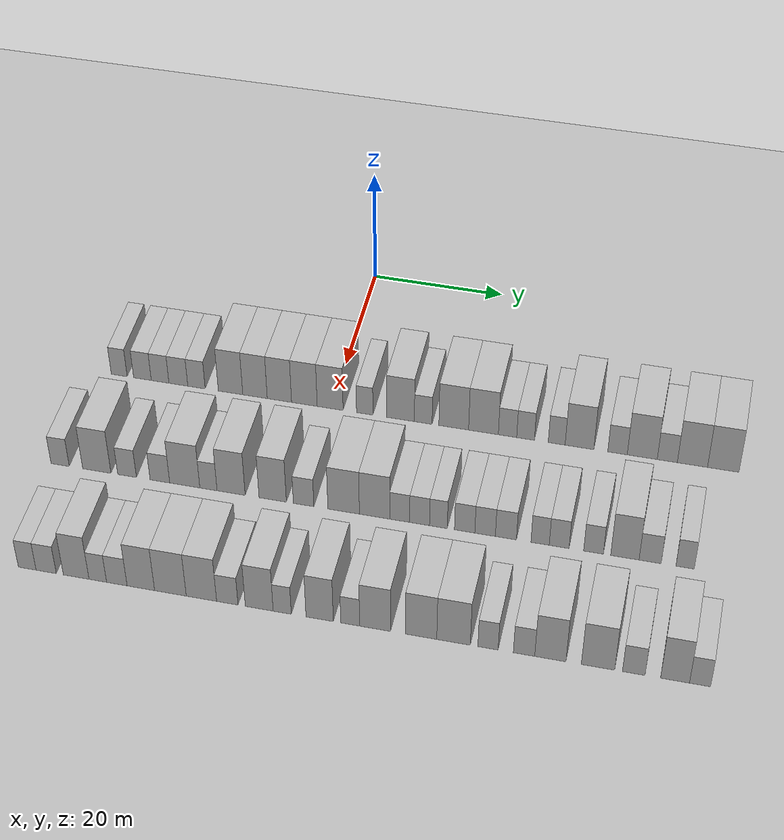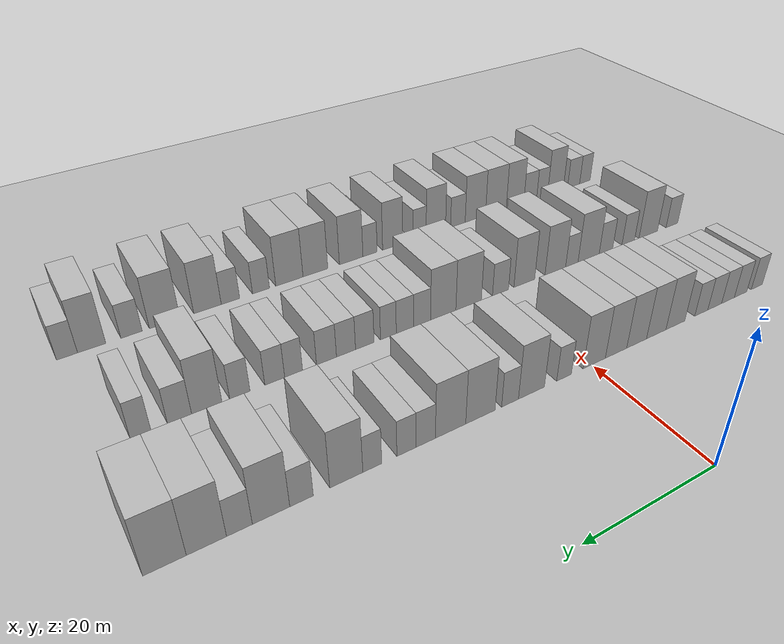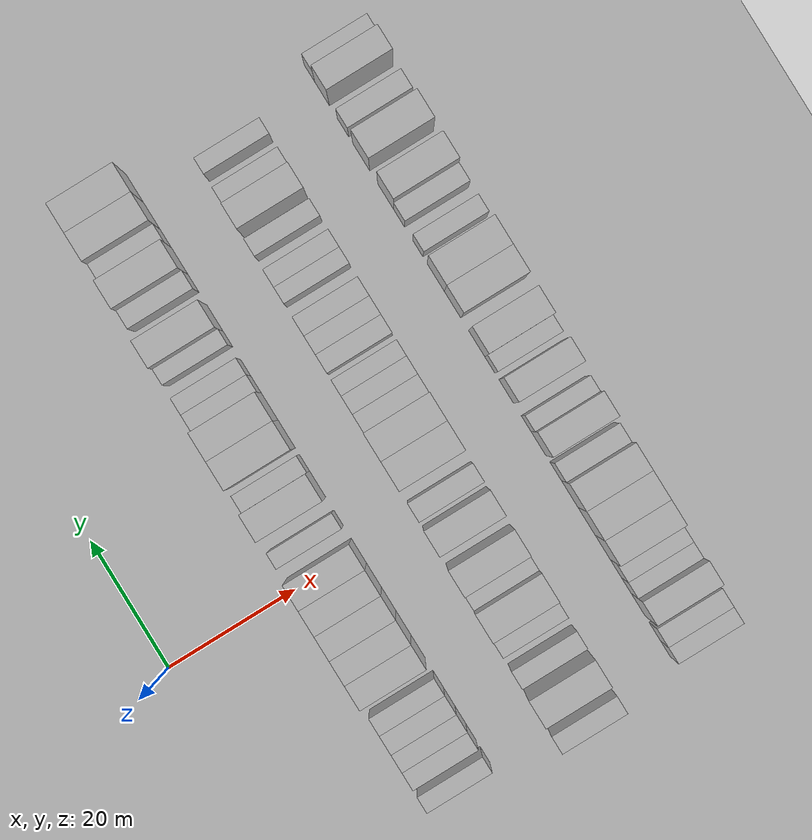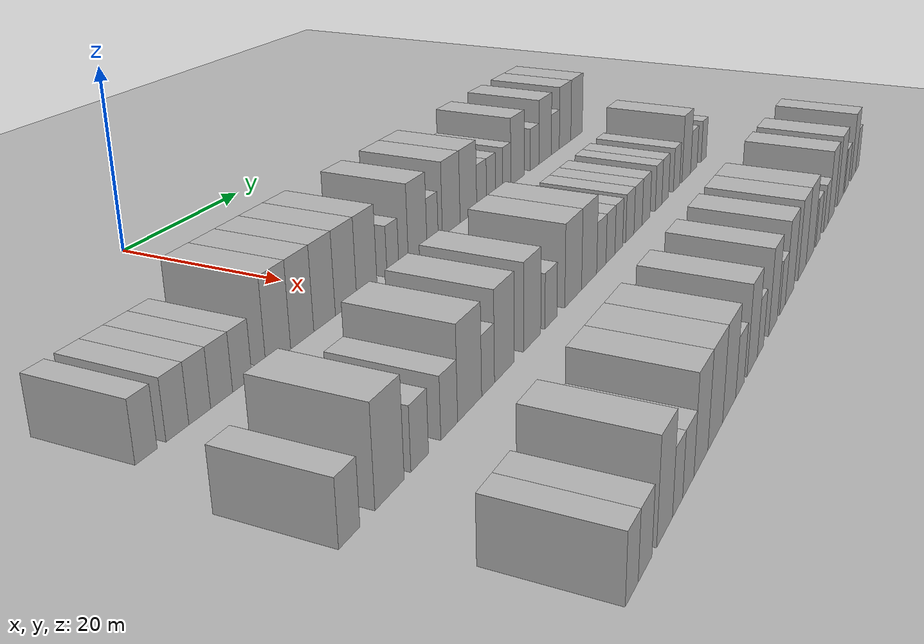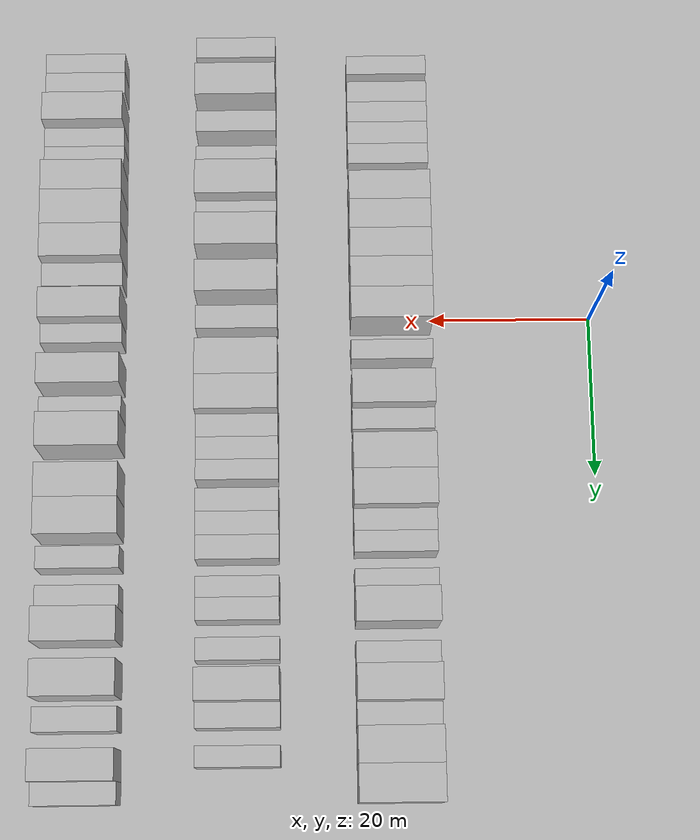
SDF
<sdf version="1.6">
 <world name="default">
  <include><name>ground_plane_1</name><uri>model://HANNAS_ground_plane</uri></include>
  <include>
   <name>ground_plane_2</name>
   <uri>model://HANNAS_ground_plane</uri>
   <pose>100 0 0  0 0 0</pose>
  </include>
  <model name="building_47">
   <static>1</static>
   <pose>25.0000 -32.0762 0 0.000000 0.000000 0.000000</pose>
   <link name="link">
    <pose>0 0 3.00 0 0 0</pose>
    <collision name="collision"><geometry><box><size>10.0000 2.4571 6.0000</size></box></geometry></collision>
    <visual name="visual">
     <cast_shadows>0</cast_shadows>
     <geometry><box><size>10.0000 2.4571 6.0000</size></box></geometry>
     <material>
      <script>
       <uri>model://HANNAS_wall/materials/scripts</uri>
       <uri>model://HANNAS_wall/materials/textures</uri>
       <name>vrc/HANNAS_wall</name>
      </script>
     </material>
    </visual>
   </link>
  </model>
  <model name="building_48">
   <static>1</static>
   <pose>25.0000 -28.4923 0 0.000000 0.000000 0.000000</pose>
   <link name="link">
    <pose>0 0 3.00 0 0 0</pose>
    <collision name="collision"><geometry><box><size>10.0000 2.7107 6.0000</size></box></geometry></collision>
    <visual name="visual">
     <cast_shadows>0</cast_shadows>
     <geometry><box><size>10.0000 2.7107 6.0000</size></box></geometry>
     <material>
      <script>
       <uri>model://HANNAS_wall/materials/scripts</uri>
       <uri>model://HANNAS_wall/materials/textures</uri>
       <name>vrc/HANNAS_wall</name>
      </script>
     </material>
    </visual>
   </link>
  </model>
  <model name="building_49">
   <static>1</static>
   <pose>25.0000 -25.7781 0 0.000000 0.000000 0.000000</pose>
   <link name="link">
    <pose>0 0 3.00 0 0 0</pose>
    <collision name="collision"><geometry><box><size>10.0000 2.7178 6.0000</size></box></geometry></collision>
    <visual name="visual">
     <cast_shadows>0</cast_shadows>
     <geometry><box><size>10.0000 2.7178 6.0000</size></box></geometry>
     <material>
      <script>
       <uri>model://HANNAS_wall/materials/scripts</uri>
       <uri>model://HANNAS_wall/materials/textures</uri>
       <name>vrc/HANNAS_wall</name>
      </script>
     </material>
    </visual>
   </link>
  </model>
  <model name="building_50">
   <static>1</static>
   <pose>25.0000 -22.9777 0 0.000000 0.000000 0.000000</pose>
   <link name="link">
    <pose>0 0 3.00 0 0 0</pose>
    <collision name="collision"><geometry><box><size>10.0000 2.8830 6.0000</size></box></geometry></collision>
    <visual name="visual">
     <cast_shadows>0</cast_shadows>
     <geometry><box><size>10.0000 2.8830 6.0000</size></box></geometry>
     <material>
      <script>
       <uri>model://HANNAS_wall/materials/scripts</uri>
       <uri>model://HANNAS_wall/materials/textures</uri>
       <name>vrc/HANNAS_wall</name>
      </script>
     </material>
    </visual>
   </link>
  </model>
  <model name="building_51">
   <static>1</static>
   <pose>25.0000 -20.2062 0 0.000000 0.000000 0.000000</pose>
   <link name="link">
    <pose>0 0 3.00 0 0 0</pose>
    <collision name="collision"><geometry><box><size>10.0000 2.6601 6.0000</size></box></geometry></collision>
    <visual name="visual">
     <cast_shadows>0</cast_shadows>
     <geometry><box><size>10.0000 2.6601 6.0000</size></box></geometry>
     <material>
      <script>
       <uri>model://HANNAS_wall/materials/scripts</uri>
       <uri>model://HANNAS_wall/materials/textures</uri>
       <name>vrc/HANNAS_wall</name>
      </script>
     </material>
    </visual>
   </link>
  </model>
  <model name="building_52">
   <static>1</static>
   <pose>25.0000 -15.0170 0 0.000000 0.000000 0.000000</pose>
   <link name="link">
    <pose>0 0 4.50 0 0 0</pose>
    <collision name="collision"><geometry><box><size>10.0000 3.7184 9.0000</size></box></geometry></collision>
    <visual name="visual">
     <cast_shadows>0</cast_shadows>
     <geometry><box><size>10.0000 3.7184 9.0000</size></box></geometry>
     <material>
      <script>
       <uri>model://HANNAS_wall/materials/scripts</uri>
       <uri>model://HANNAS_wall/materials/textures</uri>
       <name>vrc/HANNAS_wall</name>
      </script>
     </material>
    </visual>
   </link>
  </model>
  <model name="building_53">
   <static>1</static>
   <pose>25.0000 -11.3058 0 0.000000 0.000000 0.000000</pose>
   <link name="link">
    <pose>0 0 4.50 0 0 0</pose>
    <collision name="collision"><geometry><box><size>10.0000 3.7040 9.0000</size></box></geometry></collision>
    <visual name="visual">
     <cast_shadows>0</cast_shadows>
     <geometry><box><size>10.0000 3.7040 9.0000</size></box></geometry>
     <material>
      <script>
       <uri>model://HANNAS_wall/materials/scripts</uri>
       <uri>model://HANNAS_wall/materials/textures</uri>
       <name>vrc/HANNAS_wall</name>
      </script>
     </material>
    </visual>
   </link>
  </model>
  <model name="building_54">
   <static>1</static>
   <pose>25.0000 -7.6224 0 0.000000 0.000000 0.000000</pose>
   <link name="link">
    <pose>0 0 4.50 0 0 0</pose>
    <collision name="collision"><geometry><box><size>10.0000 3.6626 9.0000</size></box></geometry></collision>
    <visual name="visual">
     <cast_shadows>0</cast_shadows>
     <geometry><box><size>10.0000 3.6626 9.0000</size></box></geometry>
     <material>
      <script>
       <uri>model://HANNAS_wall/materials/scripts</uri>
       <uri>model://HANNAS_wall/materials/textures</uri>
       <name>vrc/HANNAS_wall</name>
      </script>
     </material>
    </visual>
   </link>
  </model>
  <model name="building_55">
   <static>1</static>
   <pose>25.0000 -3.8664 0 0.000000 0.000000 0.000000</pose>
   <link name="link">
    <pose>0 0 4.50 0 0 0</pose>
    <collision name="collision"><geometry><box><size>10.0000 3.8495 9.0000</size></box></geometry></collision>
    <visual name="visual">
     <cast_shadows>0</cast_shadows>
     <geometry><box><size>10.0000 3.8495 9.0000</size></box></geometry>
     <material>
      <script>
       <uri>model://HANNAS_wall/materials/scripts</uri>
       <uri>model://HANNAS_wall/materials/textures</uri>
       <name>vrc/HANNAS_wall</name>
      </script>
     </material>
    </visual>
   </link>
  </model>
  <model name="building_56">
   <static>1</static>
   <pose>25.0000 -0.0037 0 0.000000 0.000000 0.000000</pose>
   <link name="link">
    <pose>0 0 4.50 0 0 0</pose>
    <collision name="collision"><geometry><box><size>10.0000 3.8758 9.0000</size></box></geometry></collision>
    <visual name="visual">
     <cast_shadows>0</cast_shadows>
     <geometry><box><size>10.0000 3.8758 9.0000</size></box></geometry>
     <material>
      <script>
       <uri>model://HANNAS_wall/materials/scripts</uri>
       <uri>model://HANNAS_wall/materials/textures</uri>
       <name>vrc/HANNAS_wall</name>
      </script>
     </material>
    </visual>
   </link>
  </model>
  <model name="building_57">
   <static>1</static>
   <pose>25.0000 5.1541 0 0.000000 0.000000 0.000000</pose>
   <link name="link">
    <pose>0 0 3.00 0 0 0</pose>
    <collision name="collision"><geometry><box><size>10.0000 2.4397 6.0000</size></box></geometry></collision>
    <visual name="visual">
     <cast_shadows>0</cast_shadows>
     <geometry><box><size>10.0000 2.4397 6.0000</size></box></geometry>
     <material>
      <script>
       <uri>model://HANNAS_wall/materials/scripts</uri>
       <uri>model://HANNAS_wall/materials/textures</uri>
       <name>vrc/HANNAS_wall</name>
      </script>
     </material>
    </visual>
   </link>
  </model>
  <model name="building_58">
   <static>1</static>
   <pose>25.0000 10.4442 0 0.000000 0.000000 0.000000</pose>
   <link name="link">
    <pose>0 0 4.50 0 0 0</pose>
    <collision name="collision"><geometry><box><size>10.0000 4.1406 9.0000</size></box></geometry></collision>
    <visual name="visual">
     <cast_shadows>0</cast_shadows>
     <geometry><box><size>10.0000 4.1406 9.0000</size></box></geometry>
     <material>
      <script>
       <uri>model://HANNAS_wall/materials/scripts</uri>
       <uri>model://HANNAS_wall/materials/textures</uri>
       <name>vrc/HANNAS_wall</name>
      </script>
     </material>
    </visual>
   </link>
  </model>
  <model name="building_59">
   <static>1</static>
   <pose>25.0000 13.8162 0 0.000000 0.000000 0.000000</pose>
   <link name="link">
    <pose>0 0 3.00 0 0 0</pose>
    <collision name="collision"><geometry><box><size>10.0000 2.6035 6.0000</size></box></geometry></collision>
    <visual name="visual">
     <cast_shadows>0</cast_shadows>
     <geometry><box><size>10.0000 2.6035 6.0000</size></box></geometry>
     <material>
      <script>
       <uri>model://HANNAS_wall/materials/scripts</uri>
       <uri>model://HANNAS_wall/materials/textures</uri>
       <name>vrc/HANNAS_wall</name>
      </script>
     </material>
    </visual>
   </link>
  </model>
  <model name="building_60">
   <static>1</static>
   <pose>25.0000 18.2970 0 0.000000 0.000000 0.000000</pose>
   <link name="link">
    <pose>0 0 4.50 0 0 0</pose>
    <collision name="collision"><geometry><box><size>10.0000 4.3581 9.0000</size></box></geometry></collision>
    <visual name="visual">
     <cast_shadows>0</cast_shadows>
     <geometry><box><size>10.0000 4.3581 9.0000</size></box></geometry>
     <material>
      <script>
       <uri>model://HANNAS_wall/materials/scripts</uri>
       <uri>model://HANNAS_wall/materials/textures</uri>
       <name>vrc/HANNAS_wall</name>
      </script>
     </material>
    </visual>
   </link>
  </model>
  <model name="building_61">
   <static>1</static>
   <pose>25.0000 22.6482 0 0.000000 0.000000 0.000000</pose>
   <link name="link">
    <pose>0 0 4.50 0 0 0</pose>
    <collision name="collision"><geometry><box><size>10.0000 4.3442 9.0000</size></box></geometry></collision>
    <visual name="visual">
     <cast_shadows>0</cast_shadows>
     <geometry><box><size>10.0000 4.3442 9.0000</size></box></geometry>
     <material>
      <script>
       <uri>model://HANNAS_wall/materials/scripts</uri>
       <uri>model://HANNAS_wall/materials/textures</uri>
       <name>vrc/HANNAS_wall</name>
      </script>
     </material>
    </visual>
   </link>
  </model>
  <model name="building_62">
   <static>1</static>
   <pose>25.0000 26.1562 0 0.000000 0.000000 0.000000</pose>
   <link name="link">
    <pose>0 0 3.00 0 0 0</pose>
    <collision name="collision"><geometry><box><size>10.0000 2.6719 6.0000</size></box></geometry></collision>
    <visual name="visual">
     <cast_shadows>0</cast_shadows>
     <geometry><box><size>10.0000 2.6719 6.0000</size></box></geometry>
     <material>
      <script>
       <uri>model://HANNAS_wall/materials/scripts</uri>
       <uri>model://HANNAS_wall/materials/textures</uri>
       <name>vrc/HANNAS_wall</name>
      </script>
     </material>
    </visual>
   </link>
  </model>
  <model name="building_63">
   <static>1</static>
   <pose>25.0000 28.7782 0 0.000000 0.000000 0.000000</pose>
   <link name="link">
    <pose>0 0 3.00 0 0 0</pose>
    <collision name="collision"><geometry><box><size>10.0000 2.5722 6.0000</size></box></geometry></collision>
    <visual name="visual">
     <cast_shadows>0</cast_shadows>
     <geometry><box><size>10.0000 2.5722 6.0000</size></box></geometry>
     <material>
      <script>
       <uri>model://HANNAS_wall/materials/scripts</uri>
       <uri>model://HANNAS_wall/materials/textures</uri>
       <name>vrc/HANNAS_wall</name>
      </script>
     </material>
    </visual>
   </link>
  </model>
  <model name="building_64">
   <static>1</static>
   <pose>25.0000 33.2823 0 0.000000 0.000000 0.000000</pose>
   <link name="link">
    <pose>0 0 3.00 0 0 0</pose>
    <collision name="collision"><geometry><box><size>10.0000 2.4359 6.0000</size></box></geometry></collision>
    <visual name="visual">
     <cast_shadows>0</cast_shadows>
     <geometry><box><size>10.0000 2.4359 6.0000</size></box></geometry>
     <material>
      <script>
       <uri>model://HANNAS_wall/materials/scripts</uri>
       <uri>model://HANNAS_wall/materials/textures</uri>
       <name>vrc/HANNAS_wall</name>
      </script>
     </material>
    </visual>
   </link>
  </model>
  <model name="building_65">
   <static>1</static>
   <pose>25.0000 36.5672 0 0.000000 0.000000 0.000000</pose>
   <link name="link">
    <pose>0 0 4.50 0 0 0</pose>
    <collision name="collision"><geometry><box><size>10.0000 4.1339 9.0000</size></box></geometry></collision>
    <visual name="visual">
     <cast_shadows>0</cast_shadows>
     <geometry><box><size>10.0000 4.1339 9.0000</size></box></geometry>
     <material>
      <script>
       <uri>model://HANNAS_wall/materials/scripts</uri>
       <uri>model://HANNAS_wall/materials/textures</uri>
       <name>vrc/HANNAS_wall</name>
      </script>
     </material>
    </visual>
   </link>
  </model>
  <model name="building_66">
   <static>1</static>
   <pose>25.0000 42.0289 0 0.000000 0.000000 0.000000</pose>
   <link name="link">
    <pose>0 0 3.00 0 0 0</pose>
    <collision name="collision"><geometry><box><size>10.0000 2.7894 6.0000</size></box></geometry></collision>
    <visual name="visual">
     <cast_shadows>0</cast_shadows>
     <geometry><box><size>10.0000 2.7894 6.0000</size></box></geometry>
     <material>
      <script>
       <uri>model://HANNAS_wall/materials/scripts</uri>
       <uri>model://HANNAS_wall/materials/textures</uri>
       <name>vrc/HANNAS_wall</name>
      </script>
     </material>
    </visual>
   </link>
  </model>
  <model name="building_67">
   <static>1</static>
   <pose>25.0000 45.5592 0 0.000000 0.000000 0.000000</pose>
   <link name="link">
    <pose>0 0 4.50 0 0 0</pose>
    <collision name="collision"><geometry><box><size>10.0000 4.2712 9.0000</size></box></geometry></collision>
    <visual name="visual">
     <cast_shadows>0</cast_shadows>
     <geometry><box><size>10.0000 4.2712 9.0000</size></box></geometry>
     <material>
      <script>
       <uri>model://HANNAS_wall/materials/scripts</uri>
       <uri>model://HANNAS_wall/materials/textures</uri>
       <name>vrc/HANNAS_wall</name>
      </script>
     </material>
    </visual>
   </link>
  </model>
  <model name="building_68">
   <static>1</static>
   <pose>25.0000 49.1202 0 0.000000 0.000000 0.000000</pose>
   <link name="link">
    <pose>0 0 3.00 0 0 0</pose>
    <collision name="collision"><geometry><box><size>10.0000 2.8509 6.0000</size></box></geometry></collision>
    <visual name="visual">
     <cast_shadows>0</cast_shadows>
     <geometry><box><size>10.0000 2.8509 6.0000</size></box></geometry>
     <material>
      <script>
       <uri>model://HANNAS_wall/materials/scripts</uri>
       <uri>model://HANNAS_wall/materials/textures</uri>
       <name>vrc/HANNAS_wall</name>
      </script>
     </material>
    </visual>
   </link>
  </model>
  <model name="building_69">
   <static>1</static>
   <pose>25.0000 52.6800 0 0.000000 0.000000 0.000000</pose>
   <link name="link">
    <pose>0 0 4.50 0 0 0</pose>
    <collision name="collision"><geometry><box><size>10.0000 4.2688 9.0000</size></box></geometry></collision>
    <visual name="visual">
     <cast_shadows>0</cast_shadows>
     <geometry><box><size>10.0000 4.2688 9.0000</size></box></geometry>
     <material>
      <script>
       <uri>model://HANNAS_wall/materials/scripts</uri>
       <uri>model://HANNAS_wall/materials/textures</uri>
       <name>vrc/HANNAS_wall</name>
      </script>
     </material>
    </visual>
   </link>
  </model>
  <model name="building_70">
   <static>1</static>
   <pose>25.0000 57.0293 0 0.000000 0.000000 0.000000</pose>
   <link name="link">
    <pose>0 0 4.50 0 0 0</pose>
    <collision name="collision"><geometry><box><size>10.0000 4.4297 9.0000</size></box></geometry></collision>
    <visual name="visual">
     <cast_shadows>0</cast_shadows>
     <geometry><box><size>10.0000 4.4297 9.0000</size></box></geometry>
     <material>
      <script>
       <uri>model://HANNAS_wall/materials/scripts</uri>
       <uri>model://HANNAS_wall/materials/textures</uri>
       <name>vrc/HANNAS_wall</name>
      </script>
     </material>
    </visual>
   </link>
  </model>
  <model name="building_173">
   <static>1</static>
   <pose>44.0000 -34.6729 0 0.000000 0.000000 0.000000</pose>
   <link name="link">
    <pose>0 0 3.00 0 0 0</pose>
    <collision name="collision"><geometry><box><size>10.0000 2.7029 6.0000</size></box></geometry></collision>
    <visual name="visual">
     <cast_shadows>0</cast_shadows>
     <geometry><box><size>10.0000 2.7029 6.0000</size></box></geometry>
     <material>
      <script>
       <uri>model://HANNAS_wall/materials/scripts</uri>
       <uri>model://HANNAS_wall/materials/textures</uri>
       <name>vrc/HANNAS_wall</name>
      </script>
     </material>
    </visual>
   </link>
  </model>
  <model name="building_174">
   <static>1</static>
   <pose>44.0000 -29.2379 0 0.000000 0.000000 0.000000</pose>
   <link name="link">
    <pose>0 0 4.50 0 0 0</pose>
    <collision name="collision"><geometry><box><size>10.0000 4.1672 9.0000</size></box></geometry></collision>
    <visual name="visual">
     <cast_shadows>0</cast_shadows>
     <geometry><box><size>10.0000 4.1672 9.0000</size></box></geometry>
     <material>
      <script>
       <uri>model://HANNAS_wall/materials/scripts</uri>
       <uri>model://HANNAS_wall/materials/textures</uri>
       <name>vrc/HANNAS_wall</name>
      </script>
     </material>
    </visual>
   </link>
  </model>
  <model name="building_175">
   <static>1</static>
   <pose>44.0000 -24.7794 0 0.000000 0.000000 0.000000</pose>
   <link name="link">
    <pose>0 0 3.00 0 0 0</pose>
    <collision name="collision"><geometry><box><size>10.0000 2.7498 6.0000</size></box></geometry></collision>
    <visual name="visual">
     <cast_shadows>0</cast_shadows>
     <geometry><box><size>10.0000 2.7498 6.0000</size></box></geometry>
     <material>
      <script>
       <uri>model://HANNAS_wall/materials/scripts</uri>
       <uri>model://HANNAS_wall/materials/textures</uri>
       <name>vrc/HANNAS_wall</name>
      </script>
     </material>
    </visual>
   </link>
  </model>
  <model name="building_176">
   <static>1</static>
   <pose>44.0000 -19.9691 0 0.000000 0.000000 0.000000</pose>
   <link name="link">
    <pose>0 0 3.00 0 0 0</pose>
    <collision name="collision"><geometry><box><size>10.0000 2.8707 6.0000</size></box></geometry></collision>
    <visual name="visual">
     <cast_shadows>0</cast_shadows>
     <geometry><box><size>10.0000 2.8707 6.0000</size></box></geometry>
     <material>
      <script>
       <uri>model://HANNAS_wall/materials/scripts</uri>
       <uri>model://HANNAS_wall/materials/textures</uri>
       <name>vrc/HANNAS_wall</name>
      </script>
     </material>
    </visual>
   </link>
  </model>
  <model name="building_177">
   <static>1</static>
   <pose>44.0000 -16.3415 0 0.000000 0.000000 0.000000</pose>
   <link name="link">
    <pose>0 0 4.50 0 0 0</pose>
    <collision name="collision"><geometry><box><size>10.0000 4.3845 9.0000</size></box></geometry></collision>
    <visual name="visual">
     <cast_shadows>0</cast_shadows>
     <geometry><box><size>10.0000 4.3845 9.0000</size></box></geometry>
     <material>
      <script>
       <uri>model://HANNAS_wall/materials/scripts</uri>
       <uri>model://HANNAS_wall/materials/textures</uri>
       <name>vrc/HANNAS_wall</name>
      </script>
     </material>
    </visual>
   </link>
  </model>
  <model name="building_178">
   <static>1</static>
   <pose>44.0000 -12.8996 0 0.000000 0.000000 0.000000</pose>
   <link name="link">
    <pose>0 0 3.00 0 0 0</pose>
    <collision name="collision"><geometry><box><size>10.0000 2.4993 6.0000</size></box></geometry></collision>
    <visual name="visual">
     <cast_shadows>0</cast_shadows>
     <geometry><box><size>10.0000 2.4993 6.0000</size></box></geometry>
     <material>
      <script>
       <uri>model://HANNAS_wall/materials/scripts</uri>
       <uri>model://HANNAS_wall/materials/textures</uri>
       <name>vrc/HANNAS_wall</name>
      </script>
     </material>
    </visual>
   </link>
  </model>
  <model name="building_179">
   <static>1</static>
   <pose>44.0000 -9.6168 0 0.000000 0.000000 0.000000</pose>
   <link name="link">
    <pose>0 0 4.50 0 0 0</pose>
    <collision name="collision"><geometry><box><size>10.0000 4.0664 9.0000</size></box></geometry></collision>
    <visual name="visual">
     <cast_shadows>0</cast_shadows>
     <geometry><box><size>10.0000 4.0664 9.0000</size></box></geometry>
     <material>
      <script>
       <uri>model://HANNAS_wall/materials/scripts</uri>
       <uri>model://HANNAS_wall/materials/textures</uri>
       <name>vrc/HANNAS_wall</name>
      </script>
     </material>
    </visual>
   </link>
  </model>
  <model name="building_180">
   <static>1</static>
   <pose>44.0000 -3.6223 0 0.000000 0.000000 0.000000</pose>
   <link name="link">
    <pose>0 0 4.50 0 0 0</pose>
    <collision name="collision"><geometry><box><size>10.0000 3.9226 9.0000</size></box></geometry></collision>
    <visual name="visual">
     <cast_shadows>0</cast_shadows>
     <geometry><box><size>10.0000 3.9226 9.0000</size></box></geometry>
     <material>
      <script>
       <uri>model://HANNAS_wall/materials/scripts</uri>
       <uri>model://HANNAS_wall/materials/textures</uri>
       <name>vrc/HANNAS_wall</name>
      </script>
     </material>
    </visual>
   </link>
  </model>
  <model name="building_181">
   <static>1</static>
   <pose>44.0000 0.8036 0 0.000000 0.000000 0.000000</pose>
   <link name="link">
    <pose>0 0 3.00 0 0 0</pose>
    <collision name="collision"><geometry><box><size>10.0000 2.9291 6.0000</size></box></geometry></collision>
    <visual name="visual">
     <cast_shadows>0</cast_shadows>
     <geometry><box><size>10.0000 2.9291 6.0000</size></box></geometry>
     <material>
      <script>
       <uri>model://HANNAS_wall/materials/scripts</uri>
       <uri>model://HANNAS_wall/materials/textures</uri>
       <name>vrc/HANNAS_wall</name>
      </script>
     </material>
    </visual>
   </link>
  </model>
  <model name="building_182">
   <static>1</static>
   <pose>44.0000 6.5065 0 0.000000 0.000000 0.000000</pose>
   <link name="link">
    <pose>0 0 4.50 0 0 0</pose>
    <collision name="collision"><geometry><box><size>10.0000 4.4768 9.0000</size></box></geometry></collision>
    <visual name="visual">
     <cast_shadows>0</cast_shadows>
     <geometry><box><size>10.0000 4.4768 9.0000</size></box></geometry>
     <material>
      <script>
       <uri>model://HANNAS_wall/materials/scripts</uri>
       <uri>model://HANNAS_wall/materials/textures</uri>
       <name>vrc/HANNAS_wall</name>
      </script>
     </material>
    </visual>
   </link>
  </model>
  <model name="building_183">
   <static>1</static>
   <pose>44.0000 10.8932 0 0.000000 0.000000 0.000000</pose>
   <link name="link">
    <pose>0 0 4.50 0 0 0</pose>
    <collision name="collision"><geometry><box><size>10.0000 4.2966 9.0000</size></box></geometry></collision>
    <visual name="visual">
     <cast_shadows>0</cast_shadows>
     <geometry><box><size>10.0000 4.2966 9.0000</size></box></geometry>
     <material>
      <script>
       <uri>model://HANNAS_wall/materials/scripts</uri>
       <uri>model://HANNAS_wall/materials/textures</uri>
       <name>vrc/HANNAS_wall</name>
      </script>
     </material>
    </visual>
   </link>
  </model>
  <model name="building_184">
   <static>1</static>
   <pose>44.0000 14.4424 0 0.000000 0.000000 0.000000</pose>
   <link name="link">
    <pose>0 0 3.00 0 0 0</pose>
    <collision name="collision"><geometry><box><size>10.0000 2.8017 6.0000</size></box></geometry></collision>
    <visual name="visual">
     <cast_shadows>0</cast_shadows>
     <geometry><box><size>10.0000 2.8017 6.0000</size></box></geometry>
     <material>
      <script>
       <uri>model://HANNAS_wall/materials/scripts</uri>
       <uri>model://HANNAS_wall/materials/textures</uri>
       <name>vrc/HANNAS_wall</name>
      </script>
     </material>
    </visual>
   </link>
  </model>
  <model name="building_185">
   <static>1</static>
   <pose>44.0000 17.2338 0 0.000000 0.000000 0.000000</pose>
   <link name="link">
    <pose>0 0 3.00 0 0 0</pose>
    <collision name="collision"><geometry><box><size>10.0000 2.7811 6.0000</size></box></geometry></collision>
    <visual name="visual">
     <cast_shadows>0</cast_shadows>
     <geometry><box><size>10.0000 2.7811 6.0000</size></box></geometry>
     <material>
      <script>
       <uri>model://HANNAS_wall/materials/scripts</uri>
       <uri>model://HANNAS_wall/materials/textures</uri>
       <name>vrc/HANNAS_wall</name>
      </script>
     </material>
    </visual>
   </link>
  </model>
  <model name="building_186">
   <static>1</static>
   <pose>44.0000 19.8703 0 0.000000 0.000000 0.000000</pose>
   <link name="link">
    <pose>0 0 3.00 0 0 0</pose>
    <collision name="collision"><geometry><box><size>10.0000 2.4919 6.0000</size></box></geometry></collision>
    <visual name="visual">
     <cast_shadows>0</cast_shadows>
     <geometry><box><size>10.0000 2.4919 6.0000</size></box></geometry>
     <material>
      <script>
       <uri>model://HANNAS_wall/materials/scripts</uri>
       <uri>model://HANNAS_wall/materials/textures</uri>
       <name>vrc/HANNAS_wall</name>
      </script>
     </material>
    </visual>
   </link>
  </model>
  <model name="building_187">
   <static>1</static>
   <pose>44.0000 23.5360 0 0.000000 0.000000 0.000000</pose>
   <link name="link">
    <pose>0 0 3.00 0 0 0</pose>
    <collision name="collision"><geometry><box><size>10.0000 2.8397 6.0000</size></box></geometry></collision>
    <visual name="visual">
     <cast_shadows>0</cast_shadows>
     <geometry><box><size>10.0000 2.8397 6.0000</size></box></geometry>
     <material>
      <script>
       <uri>model://HANNAS_wall/materials/scripts</uri>
       <uri>model://HANNAS_wall/materials/textures</uri>
       <name>vrc/HANNAS_wall</name>
      </script>
     </material>
    </visual>
   </link>
  </model>
  <model name="building_188">
   <static>1</static>
   <pose>44.0000 26.3841 0 0.000000 0.000000 0.000000</pose>
   <link name="link">
    <pose>0 0 3.00 0 0 0</pose>
    <collision name="collision"><geometry><box><size>10.0000 2.8566 6.0000</size></box></geometry></collision>
    <visual name="visual">
     <cast_shadows>0</cast_shadows>
     <geometry><box><size>10.0000 2.8566 6.0000</size></box></geometry>
     <material>
      <script>
       <uri>model://HANNAS_wall/materials/scripts</uri>
       <uri>model://HANNAS_wall/materials/textures</uri>
       <name>vrc/HANNAS_wall</name>
      </script>
     </material>
    </visual>
   </link>
  </model>
  <model name="building_189">
   <static>1</static>
   <pose>44.0000 29.2709 0 0.000000 0.000000 0.000000</pose>
   <link name="link">
    <pose>0 0 3.00 0 0 0</pose>
    <collision name="collision"><geometry><box><size>10.0000 2.9171 6.0000</size></box></geometry></collision>
    <visual name="visual">
     <cast_shadows>0</cast_shadows>
     <geometry><box><size>10.0000 2.9171 6.0000</size></box></geometry>
     <material>
      <script>
       <uri>model://HANNAS_wall/materials/scripts</uri>
       <uri>model://HANNAS_wall/materials/textures</uri>
       <name>vrc/HANNAS_wall</name>
      </script>
     </material>
    </visual>
   </link>
  </model>
  <model name="building_190">
   <static>1</static>
   <pose>44.0000 33.9894 0 0.000000 0.000000 0.000000</pose>
   <link name="link">
    <pose>0 0 3.00 0 0 0</pose>
    <collision name="collision"><geometry><box><size>10.0000 2.5199 6.0000</size></box></geometry></collision>
    <visual name="visual">
     <cast_shadows>0</cast_shadows>
     <geometry><box><size>10.0000 2.5199 6.0000</size></box></geometry>
     <material>
      <script>
       <uri>model://HANNAS_wall/materials/scripts</uri>
       <uri>model://HANNAS_wall/materials/textures</uri>
       <name>vrc/HANNAS_wall</name>
      </script>
     </material>
    </visual>
   </link>
  </model>
  <model name="building_191">
   <static>1</static>
   <pose>44.0000 36.6136 0 0.000000 0.000000 0.000000</pose>
   <link name="link">
    <pose>0 0 3.00 0 0 0</pose>
    <collision name="collision"><geometry><box><size>10.0000 2.7285 6.0000</size></box></geometry></collision>
    <visual name="visual">
     <cast_shadows>0</cast_shadows>
     <geometry><box><size>10.0000 2.7285 6.0000</size></box></geometry>
     <material>
      <script>
       <uri>model://HANNAS_wall/materials/scripts</uri>
       <uri>model://HANNAS_wall/materials/textures</uri>
       <name>vrc/HANNAS_wall</name>
      </script>
     </material>
    </visual>
   </link>
  </model>
  <model name="building_192">
   <static>1</static>
   <pose>44.0000 41.3239 0 0.000000 0.000000 0.000000</pose>
   <link name="link">
    <pose>0 0 3.00 0 0 0</pose>
    <collision name="collision"><geometry><box><size>10.0000 2.6920 6.0000</size></box></geometry></collision>
    <visual name="visual">
     <cast_shadows>0</cast_shadows>
     <geometry><box><size>10.0000 2.6920 6.0000</size></box></geometry>
     <material>
      <script>
       <uri>model://HANNAS_wall/materials/scripts</uri>
       <uri>model://HANNAS_wall/materials/textures</uri>
       <name>vrc/HANNAS_wall</name>
      </script>
     </material>
    </visual>
   </link>
  </model>
  <model name="building_193">
   <static>1</static>
   <pose>44.0000 45.5997 0 0.000000 0.000000 0.000000</pose>
   <link name="link">
    <pose>0 0 4.50 0 0 0</pose>
    <collision name="collision"><geometry><box><size>10.0000 3.8597 9.0000</size></box></geometry></collision>
    <visual name="visual">
     <cast_shadows>0</cast_shadows>
     <geometry><box><size>10.0000 3.8597 9.0000</size></box></geometry>
     <material>
      <script>
       <uri>model://HANNAS_wall/materials/scripts</uri>
       <uri>model://HANNAS_wall/materials/textures</uri>
       <name>vrc/HANNAS_wall</name>
      </script>
     </material>
    </visual>
   </link>
  </model>
  <model name="building_194">
   <static>1</static>
   <pose>44.0000 49.0273 0 0.000000 0.000000 0.000000</pose>
   <link name="link">
    <pose>0 0 3.00 0 0 0</pose>
    <collision name="collision"><geometry><box><size>10.0000 2.9956 6.0000</size></box></geometry></collision>
    <visual name="visual">
     <cast_shadows>0</cast_shadows>
     <geometry><box><size>10.0000 2.9956 6.0000</size></box></geometry>
     <material>
      <script>
       <uri>model://HANNAS_wall/materials/scripts</uri>
       <uri>model://HANNAS_wall/materials/textures</uri>
       <name>vrc/HANNAS_wall</name>
      </script>
     </material>
    </visual>
   </link>
  </model>
  <model name="building_195">
   <static>1</static>
   <pose>44.0000 53.7595 0 0.000000 0.000000 0.000000</pose>
   <link name="link">
    <pose>0 0 3.00 0 0 0</pose>
    <collision name="collision"><geometry><box><size>10.0000 2.4687 6.0000</size></box></geometry></collision>
    <visual name="visual">
     <cast_shadows>0</cast_shadows>
     <geometry><box><size>10.0000 2.4687 6.0000</size></box></geometry>
     <material>
      <script>
       <uri>model://HANNAS_wall/materials/scripts</uri>
       <uri>model://HANNAS_wall/materials/textures</uri>
       <name>vrc/HANNAS_wall</name>
      </script>
     </material>
    </visual>
   </link>
  </model>
  <model name="building_283">
   <static>1</static>
   <pose>63.0000 -32.7454 0 0.000000 0.000000 0.000000</pose>
   <link name="link">
    <pose>0 0 3.00 0 0 0</pose>
    <collision name="collision"><geometry><box><size>10.0000 2.5075 6.0000</size></box></geometry></collision>
    <visual name="visual">
     <cast_shadows>0</cast_shadows>
     <geometry><box><size>10.0000 2.5075 6.0000</size></box></geometry>
     <material>
      <script>
       <uri>model://HANNAS_wall/materials/scripts</uri>
       <uri>model://HANNAS_wall/materials/textures</uri>
       <name>vrc/HANNAS_wall</name>
      </script>
     </material>
    </visual>
   </link>
  </model>
  <model name="building_284">
   <static>1</static>
   <pose>63.0000 -30.0654 0 0.000000 0.000000 0.000000</pose>
   <link name="link">
    <pose>0 0 3.00 0 0 0</pose>
    <collision name="collision"><geometry><box><size>10.0000 2.8526 6.0000</size></box></geometry></collision>
    <visual name="visual">
     <cast_shadows>0</cast_shadows>
     <geometry><box><size>10.0000 2.8526 6.0000</size></box></geometry>
     <material>
      <script>
       <uri>model://HANNAS_wall/materials/scripts</uri>
       <uri>model://HANNAS_wall/materials/textures</uri>
       <name>vrc/HANNAS_wall</name>
      </script>
     </material>
    </visual>
   </link>
  </model>
  <model name="building_285">
   <static>1</static>
   <pose>63.0000 -25.8348 0 0.000000 0.000000 0.000000</pose>
   <link name="link">
    <pose>0 0 4.50 0 0 0</pose>
    <collision name="collision"><geometry><box><size>10.0000 3.6086 9.0000</size></box></geometry></collision>
    <visual name="visual">
     <cast_shadows>0</cast_shadows>
     <geometry><box><size>10.0000 3.6086 9.0000</size></box></geometry>
     <material>
      <script>
       <uri>model://HANNAS_wall/materials/scripts</uri>
       <uri>model://HANNAS_wall/materials/textures</uri>
       <name>vrc/HANNAS_wall</name>
      </script>
     </material>
    </visual>
   </link>
  </model>
  <model name="building_286">
   <static>1</static>
   <pose>63.0000 -22.8011 0 0.000000 0.000000 0.000000</pose>
   <link name="link">
    <pose>0 0 3.00 0 0 0</pose>
    <collision name="collision"><geometry><box><size>10.0000 2.4588 6.0000</size></box></geometry></collision>
    <visual name="visual">
     <cast_shadows>0</cast_shadows>
     <geometry><box><size>10.0000 2.4588 6.0000</size></box></geometry>
     <material>
      <script>
       <uri>model://HANNAS_wall/materials/scripts</uri>
       <uri>model://HANNAS_wall/materials/textures</uri>
       <name>vrc/HANNAS_wall</name>
      </script>
     </material>
    </visual>
   </link>
  </model>
  <model name="building_287">
   <static>1</static>
   <pose>63.0000 -20.1354 0 0.000000 0.000000 0.000000</pose>
   <link name="link">
    <pose>0 0 3.00 0 0 0</pose>
    <collision name="collision"><geometry><box><size>10.0000 2.8726 6.0000</size></box></geometry></collision>
    <visual name="visual">
     <cast_shadows>0</cast_shadows>
     <geometry><box><size>10.0000 2.8726 6.0000</size></box></geometry>
     <material>
      <script>
       <uri>model://HANNAS_wall/materials/scripts</uri>
       <uri>model://HANNAS_wall/materials/textures</uri>
       <name>vrc/HANNAS_wall</name>
      </script>
     </material>
    </visual>
   </link>
  </model>
  <model name="building_288">
   <static>1</static>
   <pose>63.0000 -16.7839 0 0.000000 0.000000 0.000000</pose>
   <link name="link">
    <pose>0 0 4.50 0 0 0</pose>
    <collision name="collision"><geometry><box><size>10.0000 3.8305 9.0000</size></box></geometry></collision>
    <visual name="visual">
     <cast_shadows>0</cast_shadows>
     <geometry><box><size>10.0000 3.8305 9.0000</size></box></geometry>
     <material>
      <script>
       <uri>model://HANNAS_wall/materials/scripts</uri>
       <uri>model://HANNAS_wall/materials/textures</uri>
       <name>vrc/HANNAS_wall</name>
      </script>
     </material>
    </visual>
   </link>
  </model>
  <model name="building_289">
   <static>1</static>
   <pose>63.0000 -12.6743 0 0.000000 0.000000 0.000000</pose>
   <link name="link">
    <pose>0 0 4.50 0 0 0</pose>
    <collision name="collision"><geometry><box><size>10.0000 4.3887 9.0000</size></box></geometry></collision>
    <visual name="visual">
     <cast_shadows>0</cast_shadows>
     <geometry><box><size>10.0000 4.3887 9.0000</size></box></geometry>
     <material>
      <script>
       <uri>model://HANNAS_wall/materials/scripts</uri>
       <uri>model://HANNAS_wall/materials/textures</uri>
       <name>vrc/HANNAS_wall</name>
      </script>
     </material>
    </visual>
   </link>
  </model>
  <model name="building_290">
   <static>1</static>
   <pose>63.0000 -8.3870 0 0.000000 0.000000 0.000000</pose>
   <link name="link">
    <pose>0 0 4.50 0 0 0</pose>
    <collision name="collision"><geometry><box><size>10.0000 4.1859 9.0000</size></box></geometry></collision>
    <visual name="visual">
     <cast_shadows>0</cast_shadows>
     <geometry><box><size>10.0000 4.1859 9.0000</size></box></geometry>
     <material>
      <script>
       <uri>model://HANNAS_wall/materials/scripts</uri>
       <uri>model://HANNAS_wall/materials/textures</uri>
       <name>vrc/HANNAS_wall</name>
      </script>
     </material>
    </visual>
   </link>
  </model>
  <model name="building_291">
   <static>1</static>
   <pose>63.0000 -4.8245 0 0.000000 0.000000 0.000000</pose>
   <link name="link">
    <pose>0 0 3.00 0 0 0</pose>
    <collision name="collision"><geometry><box><size>10.0000 2.9390 6.0000</size></box></geometry></collision>
    <visual name="visual">
     <cast_shadows>0</cast_shadows>
     <geometry><box><size>10.0000 2.9390 6.0000</size></box></geometry>
     <material>
      <script>
       <uri>model://HANNAS_wall/materials/scripts</uri>
       <uri>model://HANNAS_wall/materials/textures</uri>
       <name>vrc/HANNAS_wall</name>
      </script>
     </material>
    </visual>
   </link>
  </model>
  <model name="building_292">
   <static>1</static>
   <pose>63.0000 -0.4512 0 0.000000 0.000000 0.000000</pose>
   <link name="link">
    <pose>0 0 4.50 0 0 0</pose>
    <collision name="collision"><geometry><box><size>10.0000 3.8076 9.0000</size></box></geometry></collision>
    <visual name="visual">
     <cast_shadows>0</cast_shadows>
     <geometry><box><size>10.0000 3.8076 9.0000</size></box></geometry>
     <material>
      <script>
       <uri>model://HANNAS_wall/materials/scripts</uri>
       <uri>model://HANNAS_wall/materials/textures</uri>
       <name>vrc/HANNAS_wall</name>
      </script>
     </material>
    </visual>
   </link>
  </model>
  <model name="building_293">
   <static>1</static>
   <pose>63.0000 2.6845 0 0.000000 0.000000 0.000000</pose>
   <link name="link">
    <pose>0 0 3.00 0 0 0</pose>
    <collision name="collision"><geometry><box><size>10.0000 2.4639 6.0000</size></box></geometry></collision>
    <visual name="visual">
     <cast_shadows>0</cast_shadows>
     <geometry><box><size>10.0000 2.4639 6.0000</size></box></geometry>
     <material>
      <script>
       <uri>model://HANNAS_wall/materials/scripts</uri>
       <uri>model://HANNAS_wall/materials/textures</uri>
       <name>vrc/HANNAS_wall</name>
      </script>
     </material>
    </visual>
   </link>
  </model>
  <model name="building_294">
   <static>1</static>
   <pose>63.0000 7.7652 0 0.000000 0.000000 0.000000</pose>
   <link name="link">
    <pose>0 0 4.50 0 0 0</pose>
    <collision name="collision"><geometry><box><size>10.0000 3.6974 9.0000</size></box></geometry></collision>
    <visual name="visual">
     <cast_shadows>0</cast_shadows>
     <geometry><box><size>10.0000 3.6974 9.0000</size></box></geometry>
     <material>
      <script>
       <uri>model://HANNAS_wall/materials/scripts</uri>
       <uri>model://HANNAS_wall/materials/textures</uri>
       <name>vrc/HANNAS_wall</name>
      </script>
     </material>
    </visual>
   </link>
  </model>
  <model name="building_295">
   <static>1</static>
   <pose>63.0000 11.8900 0 0.000000 0.000000 0.000000</pose>
   <link name="link">
    <pose>0 0 3.00 0 0 0</pose>
    <collision name="collision"><geometry><box><size>10.0000 2.5523 6.0000</size></box></geometry></collision>
    <visual name="visual">
     <cast_shadows>0</cast_shadows>
     <geometry><box><size>10.0000 2.5523 6.0000</size></box></geometry>
     <material>
      <script>
       <uri>model://HANNAS_wall/materials/scripts</uri>
       <uri>model://HANNAS_wall/materials/textures</uri>
       <name>vrc/HANNAS_wall</name>
      </script>
     </material>
    </visual>
   </link>
  </model>
  <model name="building_296">
   <static>1</static>
   <pose>63.0000 15.2356 0 0.000000 0.000000 0.000000</pose>
   <link name="link">
    <pose>0 0 4.50 0 0 0</pose>
    <collision name="collision"><geometry><box><size>10.0000 4.1389 9.0000</size></box></geometry></collision>
    <visual name="visual">
     <cast_shadows>0</cast_shadows>
     <geometry><box><size>10.0000 4.1389 9.0000</size></box></geometry>
     <material>
      <script>
       <uri>model://HANNAS_wall/materials/scripts</uri>
       <uri>model://HANNAS_wall/materials/textures</uri>
       <name>vrc/HANNAS_wall</name>
      </script>
     </material>
    </visual>
   </link>
  </model>
  <model name="building_297">
   <static>1</static>
   <pose>63.0000 21.3896 0 0.000000 0.000000 0.000000</pose>
   <link name="link">
    <pose>0 0 4.50 0 0 0</pose>
    <collision name="collision"><geometry><box><size>10.0000 4.1691 9.0000</size></box></geometry></collision>
    <visual name="visual">
     <cast_shadows>0</cast_shadows>
     <geometry><box><size>10.0000 4.1691 9.0000</size></box></geometry>
     <material>
      <script>
       <uri>model://HANNAS_wall/materials/scripts</uri>
       <uri>model://HANNAS_wall/materials/textures</uri>
       <name>vrc/HANNAS_wall</name>
      </script>
     </material>
    </visual>
   </link>
  </model>
  <model name="building_298">
   <static>1</static>
   <pose>63.0000 25.6983 0 0.000000 0.000000 0.000000</pose>
   <link name="link">
    <pose>0 0 4.50 0 0 0</pose>
    <collision name="collision"><geometry><box><size>10.0000 4.4484 9.0000</size></box></geometry></collision>
    <visual name="visual">
     <cast_shadows>0</cast_shadows>
     <geometry><box><size>10.0000 4.4484 9.0000</size></box></geometry>
     <material>
      <script>
       <uri>model://HANNAS_wall/materials/scripts</uri>
       <uri>model://HANNAS_wall/materials/textures</uri>
       <name>vrc/HANNAS_wall</name>
      </script>
     </material>
    </visual>
   </link>
  </model>
  <model name="building_299">
   <static>1</static>
   <pose>63.0000 30.2595 0 0.000000 0.000000 0.000000</pose>
   <link name="link">
    <pose>0 0 3.00 0 0 0</pose>
    <collision name="collision"><geometry><box><size>10.0000 2.6741 6.0000</size></box></geometry></collision>
    <visual name="visual">
     <cast_shadows>0</cast_shadows>
     <geometry><box><size>10.0000 2.6741 6.0000</size></box></geometry>
     <material>
      <script>
       <uri>model://HANNAS_wall/materials/scripts</uri>
       <uri>model://HANNAS_wall/materials/textures</uri>
       <name>vrc/HANNAS_wall</name>
      </script>
     </material>
    </visual>
   </link>
  </model>
  <model name="building_300">
   <static>1</static>
   <pose>63.0000 34.9991 0 0.000000 0.000000 0.000000</pose>
   <link name="link">
    <pose>0 0 3.00 0 0 0</pose>
    <collision name="collision"><geometry><box><size>10.0000 2.8051 6.0000</size></box></geometry></collision>
    <visual name="visual">
     <cast_shadows>0</cast_shadows>
     <geometry><box><size>10.0000 2.8051 6.0000</size></box></geometry>
     <material>
      <script>
       <uri>model://HANNAS_wall/materials/scripts</uri>
       <uri>model://HANNAS_wall/materials/textures</uri>
       <name>vrc/HANNAS_wall</name>
      </script>
     </material>
    </visual>
   </link>
  </model>
  <model name="building_301">
   <static>1</static>
   <pose>63.0000 38.4409 0 0.000000 0.000000 0.000000</pose>
   <link name="link">
    <pose>0 0 4.50 0 0 0</pose>
    <collision name="collision"><geometry><box><size>10.0000 4.0785 9.0000</size></box></geometry></collision>
    <visual name="visual">
     <cast_shadows>0</cast_shadows>
     <geometry><box><size>10.0000 4.0785 9.0000</size></box></geometry>
     <material>
      <script>
       <uri>model://HANNAS_wall/materials/scripts</uri>
       <uri>model://HANNAS_wall/materials/textures</uri>
       <name>vrc/HANNAS_wall</name>
      </script>
     </material>
    </visual>
   </link>
  </model>
  <model name="building_302">
   <static>1</static>
   <pose>63.0000 44.6439 0 0.000000 0.000000 0.000000</pose>
   <link name="link">
    <pose>0 0 4.50 0 0 0</pose>
    <collision name="collision"><geometry><box><size>10.0000 4.3275 9.0000</size></box></geometry></collision>
    <visual name="visual">
     <cast_shadows>0</cast_shadows>
     <geometry><box><size>10.0000 4.3275 9.0000</size></box></geometry>
     <material>
      <script>
       <uri>model://HANNAS_wall/materials/scripts</uri>
       <uri>model://HANNAS_wall/materials/textures</uri>
       <name>vrc/HANNAS_wall</name>
      </script>
     </material>
    </visual>
   </link>
  </model>
  <model name="building_303">
   <static>1</static>
   <pose>63.0000 49.2671 0 0.000000 0.000000 0.000000</pose>
   <link name="link">
    <pose>0 0 3.00 0 0 0</pose>
    <collision name="collision"><geometry><box><size>10.0000 2.9188 6.0000</size></box></geometry></collision>
    <visual name="visual">
     <cast_shadows>0</cast_shadows>
     <geometry><box><size>10.0000 2.9188 6.0000</size></box></geometry>
     <material>
      <script>
       <uri>model://HANNAS_wall/materials/scripts</uri>
       <uri>model://HANNAS_wall/materials/textures</uri>
       <name>vrc/HANNAS_wall</name>
      </script>
     </material>
    </visual>
   </link>
  </model>
  <model name="building_304">
   <static>1</static>
   <pose>63.0000 54.5778 0 0.000000 0.000000 0.000000</pose>
   <link name="link">
    <pose>0 0 4.50 0 0 0</pose>
    <collision name="collision"><geometry><box><size>10.0000 3.7028 9.0000</size></box></geometry></collision>
    <visual name="visual">
     <cast_shadows>0</cast_shadows>
     <geometry><box><size>10.0000 3.7028 9.0000</size></box></geometry>
     <material>
      <script>
       <uri>model://HANNAS_wall/materials/scripts</uri>
       <uri>model://HANNAS_wall/materials/textures</uri>
       <name>vrc/HANNAS_wall</name>
      </script>
     </material>
    </visual>
   </link>
  </model>
  <model name="building_305">
   <static>1</static>
   <pose>63.0000 57.7776 0 0.000000 0.000000 0.000000</pose>
   <link name="link">
    <pose>0 0 3.00 0 0 0</pose>
    <collision name="collision"><geometry><box><size>10.0000 2.6968 6.0000</size></box></geometry></collision>
    <visual name="visual">
     <cast_shadows>0</cast_shadows>
     <geometry><box><size>10.0000 2.6968 6.0000</size></box></geometry>
     <material>
      <script>
       <uri>model://HANNAS_wall/materials/scripts</uri>
       <uri>model://HANNAS_wall/materials/textures</uri>
       <name>vrc/HANNAS_wall</name>
      </script>
     </material>
    </visual>
   </link>
  </model>
 </world>
</sdf>
